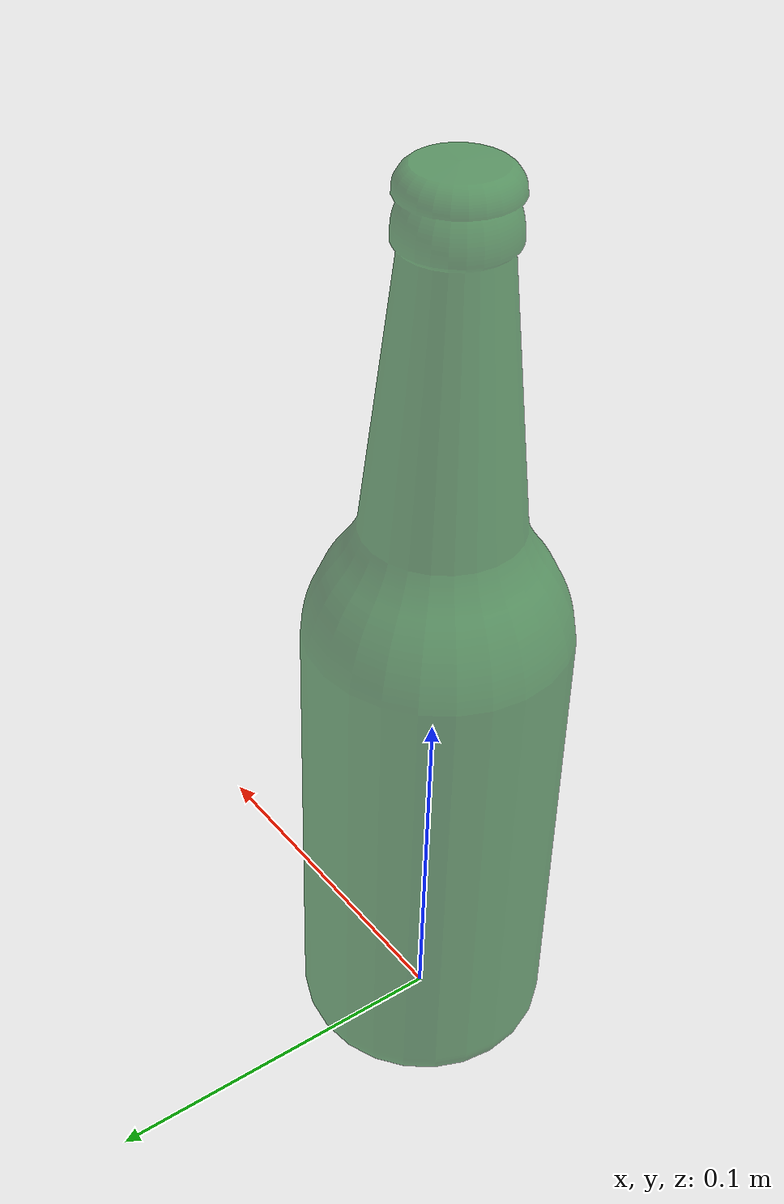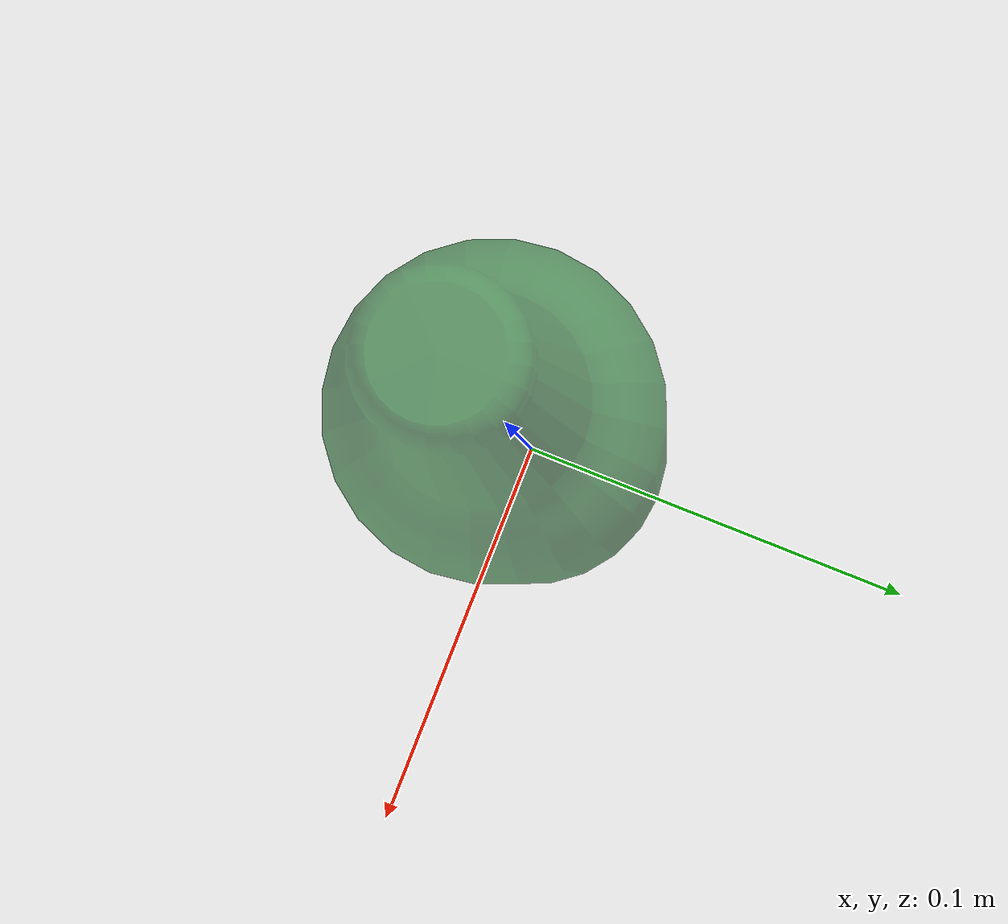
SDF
<?xml version='1.0'?>
<sdf version='1.6'>
  <model name='bottle_beer'>
    <link name='link_2'>
        <inertial>
          <pose frame=''>0.000404 7.5e-05 0 0 -0 0</pose>
            <mass>0.1</mass>
        </inertial>
        <visual name='visual'>
          <geometry>
          <mesh>
            <uri>model://bottle_beer/meshes/beer_bottle.dae</uri>
            <scale>1 1 1</scale>
          </mesh>
        </geometry>
        <material>
          <lighting>1</lighting>
            <ambient>0.035 0.415 0.098 1</ambient>
          <diffuse>0.035 0.415 0.098 1</diffuse>
          <specular>0.01 0.01 0.01 1</specular>
          <emissive>0 0 0 1</emissive>
          <shader type='vertex'>
            <normal_map>__default__</normal_map>
          </shader>
        </material>
        <cast_shadows>1</cast_shadows>
        <transparency>0.4</transparency>
      </visual>
      <collision name='collision'>
        <laser_retro>0</laser_retro>
        <max_contacts>10</max_contacts>
        <geometry>
          <mesh>
            <uri>model://bottle_beer/meshes/beer_bottle.dae</uri>
            <scale>1 1 1</scale>
          </mesh>
        </geometry>
        </collision>
    </link>
  </model>
</sdf>
